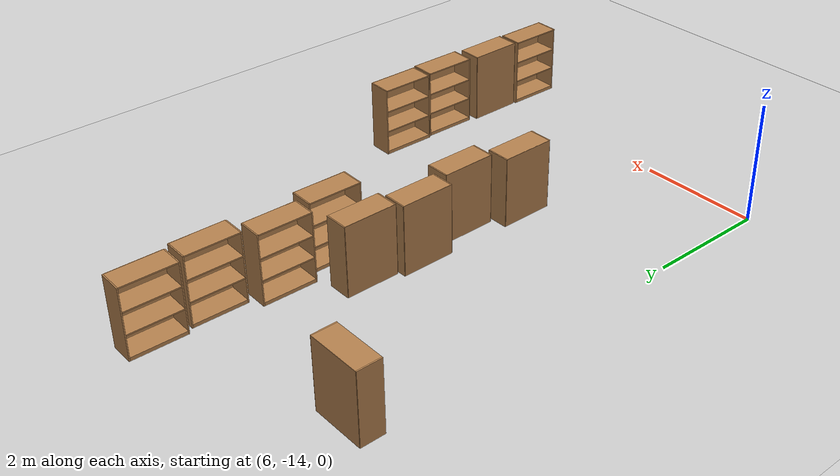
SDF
<sdf version="1.6">
 <world name="default">
  <model name="ground_plane">
   <static>1</static>
   <link name="link">
    <collision name="collision">
     <geometry><plane><normal>0 0 1</normal><size>100 100</size></plane></geometry>
     <surface>
      <contact><collide_bitmask>65535</collide_bitmask></contact>
      <friction><ode><mu>100</mu><mu2>50</mu2></ode></friction>
     </surface>
    </collision>
    <visual name="visual">
     <cast_shadows>0</cast_shadows>
     <geometry><plane><normal>0 0 1</normal><size>100 100</size></plane></geometry>
     <material>
      <script><uri>file://media/materials/scripts/gazebo.material</uri><name>Gazebo/Grey</name></script>
     </material>
    </visual>
   </link>
  </model>
  <model name="bookshelf_clone_0_clone_clone_1">
   <static>1</static>
   <link name="link">
    <inertial><mass>1</mass></inertial>
    <collision name="back">
     <pose>0 0.005 0.6 0 -0 0</pose>
     <geometry><box><size>0.9 0.01 1.2</size></box></geometry>
    </collision>
    <visual name="visual1">
     <pose>0 0.005 0.6 0 -0 0</pose>
     <geometry><box><size>0.9 0.01 1.2</size></box></geometry>
     <material>
      <script><uri>file://media/materials/scripts/gazebo.material</uri><name>Gazebo/Wood</name></script>
     </material>
    </visual>
    <collision name="left_side">
     <pose>0.45 -0.195 0.6 0 -0 0</pose>
     <geometry><box><size>0.02 0.4 1.2</size></box></geometry>
    </collision>
    <visual name="visual2">
     <pose>0.45 -0.195 0.6 0 -0 0</pose>
     <geometry><box><size>0.02 0.4 1.2</size></box></geometry>
     <material>
      <script><uri>file://media/materials/scripts/gazebo.material</uri><name>Gazebo/Wood</name></script>
     </material>
    </visual>
    <collision name="right_side">
     <pose>-0.45 -0.195 0.6 0 -0 0</pose>
     <geometry><box><size>0.02 0.4 1.2</size></box></geometry>
    </collision>
    <visual name="visual3">
     <pose>-0.45 -0.195 0.6 0 -0 0</pose>
     <geometry><box><size>0.02 0.4 1.2</size></box></geometry>
     <material>
      <script><uri>file://media/materials/scripts/gazebo.material</uri><name>Gazebo/Wood</name></script>
     </material>
    </visual>
    <collision name="bottom">
     <pose>0 -0.195 0.03 0 -0 0</pose>
     <geometry><box><size>0.88 0.4 0.06</size></box></geometry>
    </collision>
    <visual name="visual4">
     <pose>0 -0.195 0.03 0 -0 0</pose>
     <geometry><box><size>0.88 0.4 0.06</size></box></geometry>
     <material>
      <script><uri>file://media/materials/scripts/gazebo.material</uri><name>Gazebo/Wood</name></script>
     </material>
    </visual>
    <collision name="top">
     <pose>0 -0.195 1.19 0 -0 0</pose>
     <geometry><box><size>0.88 0.4 0.02</size></box></geometry>
    </collision>
    <visual name="visual5">
     <pose>0 -0.195 1.19 0 -0 0</pose>
     <geometry><box><size>0.88 0.4 0.02</size></box></geometry>
     <material>
      <script><uri>file://media/materials/scripts/gazebo.material</uri><name>Gazebo/Wood</name></script>
     </material>
    </visual>
    <collision name="low_shelf">
     <pose>0 -0.195 0.43 0 -0 0</pose>
     <geometry><box><size>0.88 0.4 0.02</size></box></geometry>
    </collision>
    <visual name="visual6">
     <pose>0 -0.195 0.43 0 -0 0</pose>
     <geometry><box><size>0.88 0.4 0.02</size></box></geometry>
     <material>
      <script><uri>file://media/materials/scripts/gazebo.material</uri><name>Gazebo/Wood</name></script>
     </material>
    </visual>
    <collision name="high_shelf">
     <pose>0 -0.195 0.8 0 -0 0</pose>
     <geometry><box><size>0.88 0.4 0.02</size></box></geometry>
    </collision>
    <visual name="visual7">
     <pose>0 -0.195 0.8 0 -0 0</pose>
     <geometry><box><size>0.88 0.4 0.02</size></box></geometry>
     <material>
      <script><uri>file://media/materials/scripts/gazebo.material</uri><name>Gazebo/Wood</name></script>
     </material>
    </visual>
   </link>
   <pose>11.7125 -12.4697 0 0 0 -1.58271</pose>
  </model>
  <model name="bookshelf_clone_0_clone_clone_2">
   <static>1</static>
   <link name="link">
    <inertial><mass>1</mass></inertial>
    <collision name="back">
     <pose>0 0.005 0.6 0 -0 0</pose>
     <geometry><box><size>0.9 0.01 1.2</size></box></geometry>
    </collision>
    <visual name="visual1">
     <pose>0 0.005 0.6 0 -0 0</pose>
     <geometry><box><size>0.9 0.01 1.2</size></box></geometry>
     <material>
      <script><uri>file://media/materials/scripts/gazebo.material</uri><name>Gazebo/Wood</name></script>
     </material>
    </visual>
    <collision name="left_side">
     <pose>0.45 -0.195 0.6 0 -0 0</pose>
     <geometry><box><size>0.02 0.4 1.2</size></box></geometry>
    </collision>
    <visual name="visual2">
     <pose>0.45 -0.195 0.6 0 -0 0</pose>
     <geometry><box><size>0.02 0.4 1.2</size></box></geometry>
     <material>
      <script><uri>file://media/materials/scripts/gazebo.material</uri><name>Gazebo/Wood</name></script>
     </material>
    </visual>
    <collision name="right_side">
     <pose>-0.45 -0.195 0.6 0 -0 0</pose>
     <geometry><box><size>0.02 0.4 1.2</size></box></geometry>
    </collision>
    <visual name="visual3">
     <pose>-0.45 -0.195 0.6 0 -0 0</pose>
     <geometry><box><size>0.02 0.4 1.2</size></box></geometry>
     <material>
      <script><uri>file://media/materials/scripts/gazebo.material</uri><name>Gazebo/Wood</name></script>
     </material>
    </visual>
    <collision name="bottom">
     <pose>0 -0.195 0.03 0 -0 0</pose>
     <geometry><box><size>0.88 0.4 0.06</size></box></geometry>
    </collision>
    <visual name="visual4">
     <pose>0 -0.195 0.03 0 -0 0</pose>
     <geometry><box><size>0.88 0.4 0.06</size></box></geometry>
     <material>
      <script><uri>file://media/materials/scripts/gazebo.material</uri><name>Gazebo/Wood</name></script>
     </material>
    </visual>
    <collision name="top">
     <pose>0 -0.195 1.19 0 -0 0</pose>
     <geometry><box><size>0.88 0.4 0.02</size></box></geometry>
    </collision>
    <visual name="visual5">
     <pose>0 -0.195 1.19 0 -0 0</pose>
     <geometry><box><size>0.88 0.4 0.02</size></box></geometry>
     <material>
      <script><uri>file://media/materials/scripts/gazebo.material</uri><name>Gazebo/Wood</name></script>
     </material>
    </visual>
    <collision name="low_shelf">
     <pose>0 -0.195 0.43 0 -0 0</pose>
     <geometry><box><size>0.88 0.4 0.02</size></box></geometry>
    </collision>
    <visual name="visual6">
     <pose>0 -0.195 0.43 0 -0 0</pose>
     <geometry><box><size>0.88 0.4 0.02</size></box></geometry>
     <material>
      <script><uri>file://media/materials/scripts/gazebo.material</uri><name>Gazebo/Wood</name></script>
     </material>
    </visual>
    <collision name="high_shelf">
     <pose>0 -0.195 0.8 0 -0 0</pose>
     <geometry><box><size>0.88 0.4 0.02</size></box></geometry>
    </collision>
    <visual name="visual7">
     <pose>0 -0.195 0.8 0 -0 0</pose>
     <geometry><box><size>0.88 0.4 0.02</size></box></geometry>
     <material>
      <script><uri>file://media/materials/scripts/gazebo.material</uri><name>Gazebo/Wood</name></script>
     </material>
    </visual>
   </link>
   <pose>11.6911 -11.5177 0 0 0 -1.58271</pose>
  </model>
  <model name="bookshelf_clone_clone_clone_0_clone_0_clone_6_clone">
   <static>1</static>
   <link name="link">
    <inertial><mass>1</mass></inertial>
    <collision name="back">
     <pose>0 0.005 0.6 0 -0 0</pose>
     <geometry><box><size>0.9 0.01 1.2</size></box></geometry>
    </collision>
    <visual name="visual1">
     <pose>0 0.005 0.6 0 -0 0</pose>
     <geometry><box><size>0.9 0.01 1.2</size></box></geometry>
     <material>
      <script><uri>file://media/materials/scripts/gazebo.material</uri><name>Gazebo/Wood</name></script>
     </material>
    </visual>
    <collision name="left_side">
     <pose>0.45 -0.195 0.6 0 -0 0</pose>
     <geometry><box><size>0.02 0.4 1.2</size></box></geometry>
    </collision>
    <visual name="visual2">
     <pose>0.45 -0.195 0.6 0 -0 0</pose>
     <geometry><box><size>0.02 0.4 1.2</size></box></geometry>
     <material>
      <script><uri>file://media/materials/scripts/gazebo.material</uri><name>Gazebo/Wood</name></script>
     </material>
    </visual>
    <collision name="right_side">
     <pose>-0.45 -0.195 0.6 0 -0 0</pose>
     <geometry><box><size>0.02 0.4 1.2</size></box></geometry>
    </collision>
    <visual name="visual3">
     <pose>-0.45 -0.195 0.6 0 -0 0</pose>
     <geometry><box><size>0.02 0.4 1.2</size></box></geometry>
     <material>
      <script><uri>file://media/materials/scripts/gazebo.material</uri><name>Gazebo/Wood</name></script>
     </material>
    </visual>
    <collision name="bottom">
     <pose>0 -0.195 0.03 0 -0 0</pose>
     <geometry><box><size>0.88 0.4 0.06</size></box></geometry>
    </collision>
    <visual name="visual4">
     <pose>0 -0.195 0.03 0 -0 0</pose>
     <geometry><box><size>0.88 0.4 0.06</size></box></geometry>
     <material>
      <script><uri>file://media/materials/scripts/gazebo.material</uri><name>Gazebo/Wood</name></script>
     </material>
    </visual>
    <collision name="top">
     <pose>0 -0.195 1.19 0 -0 0</pose>
     <geometry><box><size>0.88 0.4 0.02</size></box></geometry>
    </collision>
    <visual name="visual5">
     <pose>0 -0.195 1.19 0 -0 0</pose>
     <geometry><box><size>0.88 0.4 0.02</size></box></geometry>
     <material>
      <script><uri>file://media/materials/scripts/gazebo.material</uri><name>Gazebo/Wood</name></script>
     </material>
    </visual>
    <collision name="low_shelf">
     <pose>0 -0.195 0.43 0 -0 0</pose>
     <geometry><box><size>0.88 0.4 0.02</size></box></geometry>
    </collision>
    <visual name="visual6">
     <pose>0 -0.195 0.43 0 -0 0</pose>
     <geometry><box><size>0.88 0.4 0.02</size></box></geometry>
     <material>
      <script><uri>file://media/materials/scripts/gazebo.material</uri><name>Gazebo/Wood</name></script>
     </material>
    </visual>
    <collision name="high_shelf">
     <pose>0 -0.195 0.8 0 -0 0</pose>
     <geometry><box><size>0.88 0.4 0.02</size></box></geometry>
    </collision>
    <visual name="visual7">
     <pose>0 -0.195 0.8 0 -0 0</pose>
     <geometry><box><size>0.88 0.4 0.02</size></box></geometry>
     <material>
      <script><uri>file://media/materials/scripts/gazebo.material</uri><name>Gazebo/Wood</name></script>
     </material>
    </visual>
   </link>
   <pose>6.39677 -6.34076 0 0 -0 0</pose>
  </model>
  <model name="bookshelf_clone_0_clone_clone_1_clone">
   <static>1</static>
   <link name="link">
    <inertial><mass>1</mass></inertial>
    <collision name="back">
     <pose>0 0.005 0.6 0 -0 0</pose>
     <geometry><box><size>0.9 0.01 1.2</size></box></geometry>
    </collision>
    <visual name="visual1">
     <pose>0 0.005 0.6 0 -0 0</pose>
     <geometry><box><size>0.9 0.01 1.2</size></box></geometry>
     <material>
      <script><uri>file://media/materials/scripts/gazebo.material</uri><name>Gazebo/Wood</name></script>
     </material>
    </visual>
    <collision name="left_side">
     <pose>0.45 -0.195 0.6 0 -0 0</pose>
     <geometry><box><size>0.02 0.4 1.2</size></box></geometry>
    </collision>
    <visual name="visual2">
     <pose>0.45 -0.195 0.6 0 -0 0</pose>
     <geometry><box><size>0.02 0.4 1.2</size></box></geometry>
     <material>
      <script><uri>file://media/materials/scripts/gazebo.material</uri><name>Gazebo/Wood</name></script>
     </material>
    </visual>
    <collision name="right_side">
     <pose>-0.45 -0.195 0.6 0 -0 0</pose>
     <geometry><box><size>0.02 0.4 1.2</size></box></geometry>
    </collision>
    <visual name="visual3">
     <pose>-0.45 -0.195 0.6 0 -0 0</pose>
     <geometry><box><size>0.02 0.4 1.2</size></box></geometry>
     <material>
      <script><uri>file://media/materials/scripts/gazebo.material</uri><name>Gazebo/Wood</name></script>
     </material>
    </visual>
    <collision name="bottom">
     <pose>0 -0.195 0.03 0 -0 0</pose>
     <geometry><box><size>0.88 0.4 0.06</size></box></geometry>
    </collision>
    <visual name="visual4">
     <pose>0 -0.195 0.03 0 -0 0</pose>
     <geometry><box><size>0.88 0.4 0.06</size></box></geometry>
     <material>
      <script><uri>file://media/materials/scripts/gazebo.material</uri><name>Gazebo/Wood</name></script>
     </material>
    </visual>
    <collision name="top">
     <pose>0 -0.195 1.19 0 -0 0</pose>
     <geometry><box><size>0.88 0.4 0.02</size></box></geometry>
    </collision>
    <visual name="visual5">
     <pose>0 -0.195 1.19 0 -0 0</pose>
     <geometry><box><size>0.88 0.4 0.02</size></box></geometry>
     <material>
      <script><uri>file://media/materials/scripts/gazebo.material</uri><name>Gazebo/Wood</name></script>
     </material>
    </visual>
    <collision name="low_shelf">
     <pose>0 -0.195 0.43 0 -0 0</pose>
     <geometry><box><size>0.88 0.4 0.02</size></box></geometry>
    </collision>
    <visual name="visual6">
     <pose>0 -0.195 0.43 0 -0 0</pose>
     <geometry><box><size>0.88 0.4 0.02</size></box></geometry>
     <material>
      <script><uri>file://media/materials/scripts/gazebo.material</uri><name>Gazebo/Wood</name></script>
     </material>
    </visual>
    <collision name="high_shelf">
     <pose>0 -0.195 0.8 0 -0 0</pose>
     <geometry><box><size>0.88 0.4 0.02</size></box></geometry>
    </collision>
    <visual name="visual7">
     <pose>0 -0.195 0.8 0 -0 0</pose>
     <geometry><box><size>0.88 0.4 0.02</size></box></geometry>
     <material>
      <script><uri>file://media/materials/scripts/gazebo.material</uri><name>Gazebo/Wood</name></script>
     </material>
    </visual>
   </link>
   <pose>11.271 -13.498 0 0 -0 1.57423</pose>
  </model>
  <model name="bookshelf_clone_0_clone_clone_1_clone_0">
   <static>1</static>
   <link name="link">
    <inertial><mass>1</mass></inertial>
    <collision name="back">
     <pose>0 0.005 0.6 0 -0 0</pose>
     <geometry><box><size>0.9 0.01 1.2</size></box></geometry>
    </collision>
    <visual name="visual1">
     <pose>0 0.005 0.6 0 -0 0</pose>
     <geometry><box><size>0.9 0.01 1.2</size></box></geometry>
     <material>
      <script><uri>file://media/materials/scripts/gazebo.material</uri><name>Gazebo/Wood</name></script>
     </material>
    </visual>
    <collision name="left_side">
     <pose>0.45 -0.195 0.6 0 -0 0</pose>
     <geometry><box><size>0.02 0.4 1.2</size></box></geometry>
    </collision>
    <visual name="visual2">
     <pose>0.45 -0.195 0.6 0 -0 0</pose>
     <geometry><box><size>0.02 0.4 1.2</size></box></geometry>
     <material>
      <script><uri>file://media/materials/scripts/gazebo.material</uri><name>Gazebo/Wood</name></script>
     </material>
    </visual>
    <collision name="right_side">
     <pose>-0.45 -0.195 0.6 0 -0 0</pose>
     <geometry><box><size>0.02 0.4 1.2</size></box></geometry>
    </collision>
    <visual name="visual3">
     <pose>-0.45 -0.195 0.6 0 -0 0</pose>
     <geometry><box><size>0.02 0.4 1.2</size></box></geometry>
     <material>
      <script><uri>file://media/materials/scripts/gazebo.material</uri><name>Gazebo/Wood</name></script>
     </material>
    </visual>
    <collision name="bottom">
     <pose>0 -0.195 0.03 0 -0 0</pose>
     <geometry><box><size>0.88 0.4 0.06</size></box></geometry>
    </collision>
    <visual name="visual4">
     <pose>0 -0.195 0.03 0 -0 0</pose>
     <geometry><box><size>0.88 0.4 0.06</size></box></geometry>
     <material>
      <script><uri>file://media/materials/scripts/gazebo.material</uri><name>Gazebo/Wood</name></script>
     </material>
    </visual>
    <collision name="top">
     <pose>0 -0.195 1.19 0 -0 0</pose>
     <geometry><box><size>0.88 0.4 0.02</size></box></geometry>
    </collision>
    <visual name="visual5">
     <pose>0 -0.195 1.19 0 -0 0</pose>
     <geometry><box><size>0.88 0.4 0.02</size></box></geometry>
     <material>
      <script><uri>file://media/materials/scripts/gazebo.material</uri><name>Gazebo/Wood</name></script>
     </material>
    </visual>
    <collision name="low_shelf">
     <pose>0 -0.195 0.43 0 -0 0</pose>
     <geometry><box><size>0.88 0.4 0.02</size></box></geometry>
    </collision>
    <visual name="visual6">
     <pose>0 -0.195 0.43 0 -0 0</pose>
     <geometry><box><size>0.88 0.4 0.02</size></box></geometry>
     <material>
      <script><uri>file://media/materials/scripts/gazebo.material</uri><name>Gazebo/Wood</name></script>
     </material>
    </visual>
    <collision name="high_shelf">
     <pose>0 -0.195 0.8 0 -0 0</pose>
     <geometry><box><size>0.88 0.4 0.02</size></box></geometry>
    </collision>
    <visual name="visual7">
     <pose>0 -0.195 0.8 0 -0 0</pose>
     <geometry><box><size>0.88 0.4 0.02</size></box></geometry>
     <material>
      <script><uri>file://media/materials/scripts/gazebo.material</uri><name>Gazebo/Wood</name></script>
     </material>
    </visual>
   </link>
   <pose>11.6296 -14.456 0 0 0 -1.58271</pose>
  </model>
  <model name="bookshelf_clone_0_clone_clone_1_clone_clone">
   <static>1</static>
   <link name="link">
    <inertial><mass>1</mass></inertial>
    <collision name="back">
     <pose>0 0.005 0.6 0 -0 0</pose>
     <geometry><box><size>0.9 0.01 1.2</size></box></geometry>
    </collision>
    <visual name="visual1">
     <pose>0 0.005 0.6 0 -0 0</pose>
     <geometry><box><size>0.9 0.01 1.2</size></box></geometry>
     <material>
      <script><uri>file://media/materials/scripts/gazebo.material</uri><name>Gazebo/Wood</name></script>
     </material>
    </visual>
    <collision name="left_side">
     <pose>0.45 -0.195 0.6 0 -0 0</pose>
     <geometry><box><size>0.02 0.4 1.2</size></box></geometry>
    </collision>
    <visual name="visual2">
     <pose>0.45 -0.195 0.6 0 -0 0</pose>
     <geometry><box><size>0.02 0.4 1.2</size></box></geometry>
     <material>
      <script><uri>file://media/materials/scripts/gazebo.material</uri><name>Gazebo/Wood</name></script>
     </material>
    </visual>
    <collision name="right_side">
     <pose>-0.45 -0.195 0.6 0 -0 0</pose>
     <geometry><box><size>0.02 0.4 1.2</size></box></geometry>
    </collision>
    <visual name="visual3">
     <pose>-0.45 -0.195 0.6 0 -0 0</pose>
     <geometry><box><size>0.02 0.4 1.2</size></box></geometry>
     <material>
      <script><uri>file://media/materials/scripts/gazebo.material</uri><name>Gazebo/Wood</name></script>
     </material>
    </visual>
    <collision name="bottom">
     <pose>0 -0.195 0.03 0 -0 0</pose>
     <geometry><box><size>0.88 0.4 0.06</size></box></geometry>
    </collision>
    <visual name="visual4">
     <pose>0 -0.195 0.03 0 -0 0</pose>
     <geometry><box><size>0.88 0.4 0.06</size></box></geometry>
     <material>
      <script><uri>file://media/materials/scripts/gazebo.material</uri><name>Gazebo/Wood</name></script>
     </material>
    </visual>
    <collision name="top">
     <pose>0 -0.195 1.19 0 -0 0</pose>
     <geometry><box><size>0.88 0.4 0.02</size></box></geometry>
    </collision>
    <visual name="visual5">
     <pose>0 -0.195 1.19 0 -0 0</pose>
     <geometry><box><size>0.88 0.4 0.02</size></box></geometry>
     <material>
      <script><uri>file://media/materials/scripts/gazebo.material</uri><name>Gazebo/Wood</name></script>
     </material>
    </visual>
    <collision name="low_shelf">
     <pose>0 -0.195 0.43 0 -0 0</pose>
     <geometry><box><size>0.88 0.4 0.02</size></box></geometry>
    </collision>
    <visual name="visual6">
     <pose>0 -0.195 0.43 0 -0 0</pose>
     <geometry><box><size>0.88 0.4 0.02</size></box></geometry>
     <material>
      <script><uri>file://media/materials/scripts/gazebo.material</uri><name>Gazebo/Wood</name></script>
     </material>
    </visual>
    <collision name="high_shelf">
     <pose>0 -0.195 0.8 0 -0 0</pose>
     <geometry><box><size>0.88 0.4 0.02</size></box></geometry>
    </collision>
    <visual name="visual7">
     <pose>0 -0.195 0.8 0 -0 0</pose>
     <geometry><box><size>0.88 0.4 0.02</size></box></geometry>
     <material>
      <script><uri>file://media/materials/scripts/gazebo.material</uri><name>Gazebo/Wood</name></script>
     </material>
    </visual>
   </link>
   <pose>8.4817 -8.52181 0 0 -0 1.57423</pose>
  </model>
  <model name="bookshelf_clone_0_clone_clone_1_clone_clone_0">
   <static>1</static>
   <link name="link">
    <inertial><mass>1</mass></inertial>
    <collision name="back">
     <pose>0 0.005 0.6 0 -0 0</pose>
     <geometry><box><size>0.9 0.01 1.2</size></box></geometry>
    </collision>
    <visual name="visual1">
     <pose>0 0.005 0.6 0 -0 0</pose>
     <geometry><box><size>0.9 0.01 1.2</size></box></geometry>
     <material>
      <script><uri>file://media/materials/scripts/gazebo.material</uri><name>Gazebo/Wood</name></script>
     </material>
    </visual>
    <collision name="left_side">
     <pose>0.45 -0.195 0.6 0 -0 0</pose>
     <geometry><box><size>0.02 0.4 1.2</size></box></geometry>
    </collision>
    <visual name="visual2">
     <pose>0.45 -0.195 0.6 0 -0 0</pose>
     <geometry><box><size>0.02 0.4 1.2</size></box></geometry>
     <material>
      <script><uri>file://media/materials/scripts/gazebo.material</uri><name>Gazebo/Wood</name></script>
     </material>
    </visual>
    <collision name="right_side">
     <pose>-0.45 -0.195 0.6 0 -0 0</pose>
     <geometry><box><size>0.02 0.4 1.2</size></box></geometry>
    </collision>
    <visual name="visual3">
     <pose>-0.45 -0.195 0.6 0 -0 0</pose>
     <geometry><box><size>0.02 0.4 1.2</size></box></geometry>
     <material>
      <script><uri>file://media/materials/scripts/gazebo.material</uri><name>Gazebo/Wood</name></script>
     </material>
    </visual>
    <collision name="bottom">
     <pose>0 -0.195 0.03 0 -0 0</pose>
     <geometry><box><size>0.88 0.4 0.06</size></box></geometry>
    </collision>
    <visual name="visual4">
     <pose>0 -0.195 0.03 0 -0 0</pose>
     <geometry><box><size>0.88 0.4 0.06</size></box></geometry>
     <material>
      <script><uri>file://media/materials/scripts/gazebo.material</uri><name>Gazebo/Wood</name></script>
     </material>
    </visual>
    <collision name="top">
     <pose>0 -0.195 1.19 0 -0 0</pose>
     <geometry><box><size>0.88 0.4 0.02</size></box></geometry>
    </collision>
    <visual name="visual5">
     <pose>0 -0.195 1.19 0 -0 0</pose>
     <geometry><box><size>0.88 0.4 0.02</size></box></geometry>
     <material>
      <script><uri>file://media/materials/scripts/gazebo.material</uri><name>Gazebo/Wood</name></script>
     </material>
    </visual>
    <collision name="low_shelf">
     <pose>0 -0.195 0.43 0 -0 0</pose>
     <geometry><box><size>0.88 0.4 0.02</size></box></geometry>
    </collision>
    <visual name="visual6">
     <pose>0 -0.195 0.43 0 -0 0</pose>
     <geometry><box><size>0.88 0.4 0.02</size></box></geometry>
     <material>
      <script><uri>file://media/materials/scripts/gazebo.material</uri><name>Gazebo/Wood</name></script>
     </material>
    </visual>
    <collision name="high_shelf">
     <pose>0 -0.195 0.8 0 -0 0</pose>
     <geometry><box><size>0.88 0.4 0.02</size></box></geometry>
    </collision>
    <visual name="visual7">
     <pose>0 -0.195 0.8 0 -0 0</pose>
     <geometry><box><size>0.88 0.4 0.02</size></box></geometry>
     <material>
      <script><uri>file://media/materials/scripts/gazebo.material</uri><name>Gazebo/Wood</name></script>
     </material>
    </visual>
   </link>
   <pose>8.36295 -9.46695 0 0 -0 1.57423</pose>
  </model>
  <model name="bookshelf_clone_0_clone_clone_1_clone_clone_1">
   <static>1</static>
   <link name="link">
    <inertial><mass>1</mass></inertial>
    <collision name="back">
     <pose>0 0.005 0.6 0 -0 0</pose>
     <geometry><box><size>0.9 0.01 1.2</size></box></geometry>
    </collision>
    <visual name="visual1">
     <pose>0 0.005 0.6 0 -0 0</pose>
     <geometry><box><size>0.9 0.01 1.2</size></box></geometry>
     <material>
      <script><uri>file://media/materials/scripts/gazebo.material</uri><name>Gazebo/Wood</name></script>
     </material>
    </visual>
    <collision name="left_side">
     <pose>0.45 -0.195 0.6 0 -0 0</pose>
     <geometry><box><size>0.02 0.4 1.2</size></box></geometry>
    </collision>
    <visual name="visual2">
     <pose>0.45 -0.195 0.6 0 -0 0</pose>
     <geometry><box><size>0.02 0.4 1.2</size></box></geometry>
     <material>
      <script><uri>file://media/materials/scripts/gazebo.material</uri><name>Gazebo/Wood</name></script>
     </material>
    </visual>
    <collision name="right_side">
     <pose>-0.45 -0.195 0.6 0 -0 0</pose>
     <geometry><box><size>0.02 0.4 1.2</size></box></geometry>
    </collision>
    <visual name="visual3">
     <pose>-0.45 -0.195 0.6 0 -0 0</pose>
     <geometry><box><size>0.02 0.4 1.2</size></box></geometry>
     <material>
      <script><uri>file://media/materials/scripts/gazebo.material</uri><name>Gazebo/Wood</name></script>
     </material>
    </visual>
    <collision name="bottom">
     <pose>0 -0.195 0.03 0 -0 0</pose>
     <geometry><box><size>0.88 0.4 0.06</size></box></geometry>
    </collision>
    <visual name="visual4">
     <pose>0 -0.195 0.03 0 -0 0</pose>
     <geometry><box><size>0.88 0.4 0.06</size></box></geometry>
     <material>
      <script><uri>file://media/materials/scripts/gazebo.material</uri><name>Gazebo/Wood</name></script>
     </material>
    </visual>
    <collision name="top">
     <pose>0 -0.195 1.19 0 -0 0</pose>
     <geometry><box><size>0.88 0.4 0.02</size></box></geometry>
    </collision>
    <visual name="visual5">
     <pose>0 -0.195 1.19 0 -0 0</pose>
     <geometry><box><size>0.88 0.4 0.02</size></box></geometry>
     <material>
      <script><uri>file://media/materials/scripts/gazebo.material</uri><name>Gazebo/Wood</name></script>
     </material>
    </visual>
    <collision name="low_shelf">
     <pose>0 -0.195 0.43 0 -0 0</pose>
     <geometry><box><size>0.88 0.4 0.02</size></box></geometry>
    </collision>
    <visual name="visual6">
     <pose>0 -0.195 0.43 0 -0 0</pose>
     <geometry><box><size>0.88 0.4 0.02</size></box></geometry>
     <material>
      <script><uri>file://media/materials/scripts/gazebo.material</uri><name>Gazebo/Wood</name></script>
     </material>
    </visual>
    <collision name="high_shelf">
     <pose>0 -0.195 0.8 0 -0 0</pose>
     <geometry><box><size>0.88 0.4 0.02</size></box></geometry>
    </collision>
    <visual name="visual7">
     <pose>0 -0.195 0.8 0 -0 0</pose>
     <geometry><box><size>0.88 0.4 0.02</size></box></geometry>
     <material>
      <script><uri>file://media/materials/scripts/gazebo.material</uri><name>Gazebo/Wood</name></script>
     </material>
    </visual>
   </link>
   <pose>8.61371 -10.4831 0 0 -0 1.57423</pose>
  </model>
  <model name="bookshelf_clone_0_clone_clone_1_clone_clone_2">
   <static>1</static>
   <link name="link">
    <inertial><mass>1</mass></inertial>
    <collision name="back">
     <pose>0 0.005 0.6 0 -0 0</pose>
     <geometry><box><size>0.9 0.01 1.2</size></box></geometry>
    </collision>
    <visual name="visual1">
     <pose>0 0.005 0.6 0 -0 0</pose>
     <geometry><box><size>0.9 0.01 1.2</size></box></geometry>
     <material>
      <script><uri>file://media/materials/scripts/gazebo.material</uri><name>Gazebo/Wood</name></script>
     </material>
    </visual>
    <collision name="left_side">
     <pose>0.45 -0.195 0.6 0 -0 0</pose>
     <geometry><box><size>0.02 0.4 1.2</size></box></geometry>
    </collision>
    <visual name="visual2">
     <pose>0.45 -0.195 0.6 0 -0 0</pose>
     <geometry><box><size>0.02 0.4 1.2</size></box></geometry>
     <material>
      <script><uri>file://media/materials/scripts/gazebo.material</uri><name>Gazebo/Wood</name></script>
     </material>
    </visual>
    <collision name="right_side">
     <pose>-0.45 -0.195 0.6 0 -0 0</pose>
     <geometry><box><size>0.02 0.4 1.2</size></box></geometry>
    </collision>
    <visual name="visual3">
     <pose>-0.45 -0.195 0.6 0 -0 0</pose>
     <geometry><box><size>0.02 0.4 1.2</size></box></geometry>
     <material>
      <script><uri>file://media/materials/scripts/gazebo.material</uri><name>Gazebo/Wood</name></script>
     </material>
    </visual>
    <collision name="bottom">
     <pose>0 -0.195 0.03 0 -0 0</pose>
     <geometry><box><size>0.88 0.4 0.06</size></box></geometry>
    </collision>
    <visual name="visual4">
     <pose>0 -0.195 0.03 0 -0 0</pose>
     <geometry><box><size>0.88 0.4 0.06</size></box></geometry>
     <material>
      <script><uri>file://media/materials/scripts/gazebo.material</uri><name>Gazebo/Wood</name></script>
     </material>
    </visual>
    <collision name="top">
     <pose>0 -0.195 1.19 0 -0 0</pose>
     <geometry><box><size>0.88 0.4 0.02</size></box></geometry>
    </collision>
    <visual name="visual5">
     <pose>0 -0.195 1.19 0 -0 0</pose>
     <geometry><box><size>0.88 0.4 0.02</size></box></geometry>
     <material>
      <script><uri>file://media/materials/scripts/gazebo.material</uri><name>Gazebo/Wood</name></script>
     </material>
    </visual>
    <collision name="low_shelf">
     <pose>0 -0.195 0.43 0 -0 0</pose>
     <geometry><box><size>0.88 0.4 0.02</size></box></geometry>
    </collision>
    <visual name="visual6">
     <pose>0 -0.195 0.43 0 -0 0</pose>
     <geometry><box><size>0.88 0.4 0.02</size></box></geometry>
     <material>
      <script><uri>file://media/materials/scripts/gazebo.material</uri><name>Gazebo/Wood</name></script>
     </material>
    </visual>
    <collision name="high_shelf">
     <pose>0 -0.195 0.8 0 -0 0</pose>
     <geometry><box><size>0.88 0.4 0.02</size></box></geometry>
    </collision>
    <visual name="visual7">
     <pose>0 -0.195 0.8 0 -0 0</pose>
     <geometry><box><size>0.88 0.4 0.02</size></box></geometry>
     <material>
      <script><uri>file://media/materials/scripts/gazebo.material</uri><name>Gazebo/Wood</name></script>
     </material>
    </visual>
   </link>
   <pose>8.35582 -11.4655 0 0 -0 1.57423</pose>
  </model>
  <model name="bookshelf_clone_0_clone_clone_2_clone">
   <static>1</static>
   <link name="link">
    <inertial><mass>1</mass></inertial>
    <collision name="back">
     <pose>0 0.005 0.6 0 -0 0</pose>
     <geometry><box><size>0.9 0.01 1.2</size></box></geometry>
    </collision>
    <visual name="visual1">
     <pose>0 0.005 0.6 0 -0 0</pose>
     <geometry><box><size>0.9 0.01 1.2</size></box></geometry>
     <material>
      <script><uri>file://media/materials/scripts/gazebo.material</uri><name>Gazebo/Wood</name></script>
     </material>
    </visual>
    <collision name="left_side">
     <pose>0.45 -0.195 0.6 0 -0 0</pose>
     <geometry><box><size>0.02 0.4 1.2</size></box></geometry>
    </collision>
    <visual name="visual2">
     <pose>0.45 -0.195 0.6 0 -0 0</pose>
     <geometry><box><size>0.02 0.4 1.2</size></box></geometry>
     <material>
      <script><uri>file://media/materials/scripts/gazebo.material</uri><name>Gazebo/Wood</name></script>
     </material>
    </visual>
    <collision name="right_side">
     <pose>-0.45 -0.195 0.6 0 -0 0</pose>
     <geometry><box><size>0.02 0.4 1.2</size></box></geometry>
    </collision>
    <visual name="visual3">
     <pose>-0.45 -0.195 0.6 0 -0 0</pose>
     <geometry><box><size>0.02 0.4 1.2</size></box></geometry>
     <material>
      <script><uri>file://media/materials/scripts/gazebo.material</uri><name>Gazebo/Wood</name></script>
     </material>
    </visual>
    <collision name="bottom">
     <pose>0 -0.195 0.03 0 -0 0</pose>
     <geometry><box><size>0.88 0.4 0.06</size></box></geometry>
    </collision>
    <visual name="visual4">
     <pose>0 -0.195 0.03 0 -0 0</pose>
     <geometry><box><size>0.88 0.4 0.06</size></box></geometry>
     <material>
      <script><uri>file://media/materials/scripts/gazebo.material</uri><name>Gazebo/Wood</name></script>
     </material>
    </visual>
    <collision name="top">
     <pose>0 -0.195 1.19 0 -0 0</pose>
     <geometry><box><size>0.88 0.4 0.02</size></box></geometry>
    </collision>
    <visual name="visual5">
     <pose>0 -0.195 1.19 0 -0 0</pose>
     <geometry><box><size>0.88 0.4 0.02</size></box></geometry>
     <material>
      <script><uri>file://media/materials/scripts/gazebo.material</uri><name>Gazebo/Wood</name></script>
     </material>
    </visual>
    <collision name="low_shelf">
     <pose>0 -0.195 0.43 0 -0 0</pose>
     <geometry><box><size>0.88 0.4 0.02</size></box></geometry>
    </collision>
    <visual name="visual6">
     <pose>0 -0.195 0.43 0 -0 0</pose>
     <geometry><box><size>0.88 0.4 0.02</size></box></geometry>
     <material>
      <script><uri>file://media/materials/scripts/gazebo.material</uri><name>Gazebo/Wood</name></script>
     </material>
    </visual>
    <collision name="high_shelf">
     <pose>0 -0.195 0.8 0 -0 0</pose>
     <geometry><box><size>0.88 0.4 0.02</size></box></geometry>
    </collision>
    <visual name="visual7">
     <pose>0 -0.195 0.8 0 -0 0</pose>
     <geometry><box><size>0.88 0.4 0.02</size></box></geometry>
     <material>
      <script><uri>file://media/materials/scripts/gazebo.material</uri><name>Gazebo/Wood</name></script>
     </material>
    </visual>
   </link>
   <pose>9.67988 -8.5173 0 0 0 -1.58271</pose>
  </model>
  <model name="bookshelf_clone_0_clone_clone_2_clone_0">
   <static>1</static>
   <link name="link">
    <inertial><mass>1</mass></inertial>
    <collision name="back">
     <pose>0 0.005 0.6 0 -0 0</pose>
     <geometry><box><size>0.9 0.01 1.2</size></box></geometry>
    </collision>
    <visual name="visual1">
     <pose>0 0.005 0.6 0 -0 0</pose>
     <geometry><box><size>0.9 0.01 1.2</size></box></geometry>
     <material>
      <script><uri>file://media/materials/scripts/gazebo.material</uri><name>Gazebo/Wood</name></script>
     </material>
    </visual>
    <collision name="left_side">
     <pose>0.45 -0.195 0.6 0 -0 0</pose>
     <geometry><box><size>0.02 0.4 1.2</size></box></geometry>
    </collision>
    <visual name="visual2">
     <pose>0.45 -0.195 0.6 0 -0 0</pose>
     <geometry><box><size>0.02 0.4 1.2</size></box></geometry>
     <material>
      <script><uri>file://media/materials/scripts/gazebo.material</uri><name>Gazebo/Wood</name></script>
     </material>
    </visual>
    <collision name="right_side">
     <pose>-0.45 -0.195 0.6 0 -0 0</pose>
     <geometry><box><size>0.02 0.4 1.2</size></box></geometry>
    </collision>
    <visual name="visual3">
     <pose>-0.45 -0.195 0.6 0 -0 0</pose>
     <geometry><box><size>0.02 0.4 1.2</size></box></geometry>
     <material>
      <script><uri>file://media/materials/scripts/gazebo.material</uri><name>Gazebo/Wood</name></script>
     </material>
    </visual>
    <collision name="bottom">
     <pose>0 -0.195 0.03 0 -0 0</pose>
     <geometry><box><size>0.88 0.4 0.06</size></box></geometry>
    </collision>
    <visual name="visual4">
     <pose>0 -0.195 0.03 0 -0 0</pose>
     <geometry><box><size>0.88 0.4 0.06</size></box></geometry>
     <material>
      <script><uri>file://media/materials/scripts/gazebo.material</uri><name>Gazebo/Wood</name></script>
     </material>
    </visual>
    <collision name="top">
     <pose>0 -0.195 1.19 0 -0 0</pose>
     <geometry><box><size>0.88 0.4 0.02</size></box></geometry>
    </collision>
    <visual name="visual5">
     <pose>0 -0.195 1.19 0 -0 0</pose>
     <geometry><box><size>0.88 0.4 0.02</size></box></geometry>
     <material>
      <script><uri>file://media/materials/scripts/gazebo.material</uri><name>Gazebo/Wood</name></script>
     </material>
    </visual>
    <collision name="low_shelf">
     <pose>0 -0.195 0.43 0 -0 0</pose>
     <geometry><box><size>0.88 0.4 0.02</size></box></geometry>
    </collision>
    <visual name="visual6">
     <pose>0 -0.195 0.43 0 -0 0</pose>
     <geometry><box><size>0.88 0.4 0.02</size></box></geometry>
     <material>
      <script><uri>file://media/materials/scripts/gazebo.material</uri><name>Gazebo/Wood</name></script>
     </material>
    </visual>
    <collision name="high_shelf">
     <pose>0 -0.195 0.8 0 -0 0</pose>
     <geometry><box><size>0.88 0.4 0.02</size></box></geometry>
    </collision>
    <visual name="visual7">
     <pose>0 -0.195 0.8 0 -0 0</pose>
     <geometry><box><size>0.88 0.4 0.02</size></box></geometry>
     <material>
      <script><uri>file://media/materials/scripts/gazebo.material</uri><name>Gazebo/Wood</name></script>
     </material>
    </visual>
   </link>
   <pose>9.48475 -7.51736 0 0 0 -1.58271</pose>
  </model>
  <model name="bookshelf_clone_0_clone_clone_2_clone_1">
   <static>1</static>
   <link name="link">
    <inertial><mass>1</mass></inertial>
    <collision name="back">
     <pose>0 0.005 0.6 0 -0 0</pose>
     <geometry><box><size>0.9 0.01 1.2</size></box></geometry>
    </collision>
    <visual name="visual1">
     <pose>0 0.005 0.6 0 -0 0</pose>
     <geometry><box><size>0.9 0.01 1.2</size></box></geometry>
     <material>
      <script><uri>file://media/materials/scripts/gazebo.material</uri><name>Gazebo/Wood</name></script>
     </material>
    </visual>
    <collision name="left_side">
     <pose>0.45 -0.195 0.6 0 -0 0</pose>
     <geometry><box><size>0.02 0.4 1.2</size></box></geometry>
    </collision>
    <visual name="visual2">
     <pose>0.45 -0.195 0.6 0 -0 0</pose>
     <geometry><box><size>0.02 0.4 1.2</size></box></geometry>
     <material>
      <script><uri>file://media/materials/scripts/gazebo.material</uri><name>Gazebo/Wood</name></script>
     </material>
    </visual>
    <collision name="right_side">
     <pose>-0.45 -0.195 0.6 0 -0 0</pose>
     <geometry><box><size>0.02 0.4 1.2</size></box></geometry>
    </collision>
    <visual name="visual3">
     <pose>-0.45 -0.195 0.6 0 -0 0</pose>
     <geometry><box><size>0.02 0.4 1.2</size></box></geometry>
     <material>
      <script><uri>file://media/materials/scripts/gazebo.material</uri><name>Gazebo/Wood</name></script>
     </material>
    </visual>
    <collision name="bottom">
     <pose>0 -0.195 0.03 0 -0 0</pose>
     <geometry><box><size>0.88 0.4 0.06</size></box></geometry>
    </collision>
    <visual name="visual4">
     <pose>0 -0.195 0.03 0 -0 0</pose>
     <geometry><box><size>0.88 0.4 0.06</size></box></geometry>
     <material>
      <script><uri>file://media/materials/scripts/gazebo.material</uri><name>Gazebo/Wood</name></script>
     </material>
    </visual>
    <collision name="top">
     <pose>0 -0.195 1.19 0 -0 0</pose>
     <geometry><box><size>0.88 0.4 0.02</size></box></geometry>
    </collision>
    <visual name="visual5">
     <pose>0 -0.195 1.19 0 -0 0</pose>
     <geometry><box><size>0.88 0.4 0.02</size></box></geometry>
     <material>
      <script><uri>file://media/materials/scripts/gazebo.material</uri><name>Gazebo/Wood</name></script>
     </material>
    </visual>
    <collision name="low_shelf">
     <pose>0 -0.195 0.43 0 -0 0</pose>
     <geometry><box><size>0.88 0.4 0.02</size></box></geometry>
    </collision>
    <visual name="visual6">
     <pose>0 -0.195 0.43 0 -0 0</pose>
     <geometry><box><size>0.88 0.4 0.02</size></box></geometry>
     <material>
      <script><uri>file://media/materials/scripts/gazebo.material</uri><name>Gazebo/Wood</name></script>
     </material>
    </visual>
    <collision name="high_shelf">
     <pose>0 -0.195 0.8 0 -0 0</pose>
     <geometry><box><size>0.88 0.4 0.02</size></box></geometry>
    </collision>
    <visual name="visual7">
     <pose>0 -0.195 0.8 0 -0 0</pose>
     <geometry><box><size>0.88 0.4 0.02</size></box></geometry>
     <material>
      <script><uri>file://media/materials/scripts/gazebo.material</uri><name>Gazebo/Wood</name></script>
     </material>
    </visual>
   </link>
   <pose>9.71298 -6.49735 0 0 0 -1.58271</pose>
  </model>
  <model name="bookshelf_clone_0_clone_clone_2_clone_2">
   <static>1</static>
   <link name="link">
    <inertial><mass>1</mass></inertial>
    <collision name="back">
     <pose>0 0.005 0.6 0 -0 0</pose>
     <geometry><box><size>0.9 0.01 1.2</size></box></geometry>
    </collision>
    <visual name="visual1">
     <pose>0 0.005 0.6 0 -0 0</pose>
     <geometry><box><size>0.9 0.01 1.2</size></box></geometry>
     <material>
      <script><uri>file://media/materials/scripts/gazebo.material</uri><name>Gazebo/Wood</name></script>
     </material>
    </visual>
    <collision name="left_side">
     <pose>0.45 -0.195 0.6 0 -0 0</pose>
     <geometry><box><size>0.02 0.4 1.2</size></box></geometry>
    </collision>
    <visual name="visual2">
     <pose>0.45 -0.195 0.6 0 -0 0</pose>
     <geometry><box><size>0.02 0.4 1.2</size></box></geometry>
     <material>
      <script><uri>file://media/materials/scripts/gazebo.material</uri><name>Gazebo/Wood</name></script>
     </material>
    </visual>
    <collision name="right_side">
     <pose>-0.45 -0.195 0.6 0 -0 0</pose>
     <geometry><box><size>0.02 0.4 1.2</size></box></geometry>
    </collision>
    <visual name="visual3">
     <pose>-0.45 -0.195 0.6 0 -0 0</pose>
     <geometry><box><size>0.02 0.4 1.2</size></box></geometry>
     <material>
      <script><uri>file://media/materials/scripts/gazebo.material</uri><name>Gazebo/Wood</name></script>
     </material>
    </visual>
    <collision name="bottom">
     <pose>0 -0.195 0.03 0 -0 0</pose>
     <geometry><box><size>0.88 0.4 0.06</size></box></geometry>
    </collision>
    <visual name="visual4">
     <pose>0 -0.195 0.03 0 -0 0</pose>
     <geometry><box><size>0.88 0.4 0.06</size></box></geometry>
     <material>
      <script><uri>file://media/materials/scripts/gazebo.material</uri><name>Gazebo/Wood</name></script>
     </material>
    </visual>
    <collision name="top">
     <pose>0 -0.195 1.19 0 -0 0</pose>
     <geometry><box><size>0.88 0.4 0.02</size></box></geometry>
    </collision>
    <visual name="visual5">
     <pose>0 -0.195 1.19 0 -0 0</pose>
     <geometry><box><size>0.88 0.4 0.02</size></box></geometry>
     <material>
      <script><uri>file://media/materials/scripts/gazebo.material</uri><name>Gazebo/Wood</name></script>
     </material>
    </visual>
    <collision name="low_shelf">
     <pose>0 -0.195 0.43 0 -0 0</pose>
     <geometry><box><size>0.88 0.4 0.02</size></box></geometry>
    </collision>
    <visual name="visual6">
     <pose>0 -0.195 0.43 0 -0 0</pose>
     <geometry><box><size>0.88 0.4 0.02</size></box></geometry>
     <material>
      <script><uri>file://media/materials/scripts/gazebo.material</uri><name>Gazebo/Wood</name></script>
     </material>
    </visual>
    <collision name="high_shelf">
     <pose>0 -0.195 0.8 0 -0 0</pose>
     <geometry><box><size>0.88 0.4 0.02</size></box></geometry>
    </collision>
    <visual name="visual7">
     <pose>0 -0.195 0.8 0 -0 0</pose>
     <geometry><box><size>0.88 0.4 0.02</size></box></geometry>
     <material>
      <script><uri>file://media/materials/scripts/gazebo.material</uri><name>Gazebo/Wood</name></script>
     </material>
    </visual>
   </link>
   <pose>9.64529 -5.49461 0 0 0 -1.58271</pose>
  </model>
 </world>
</sdf>
